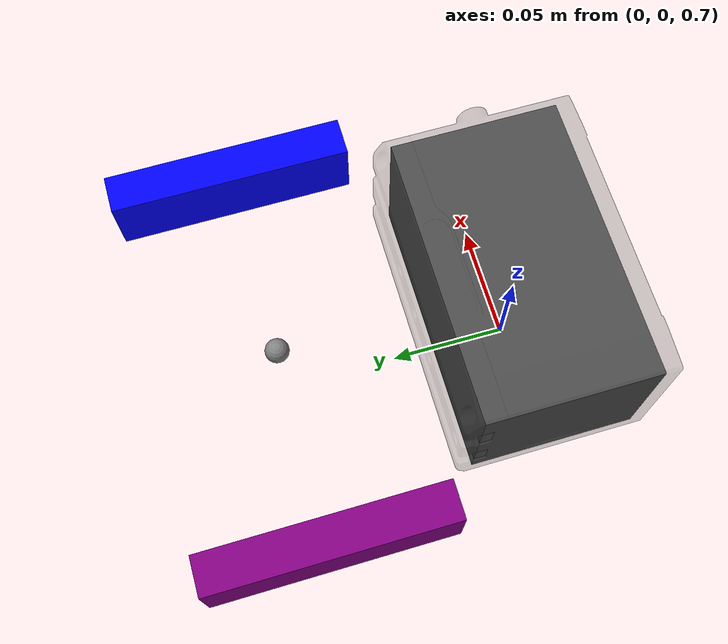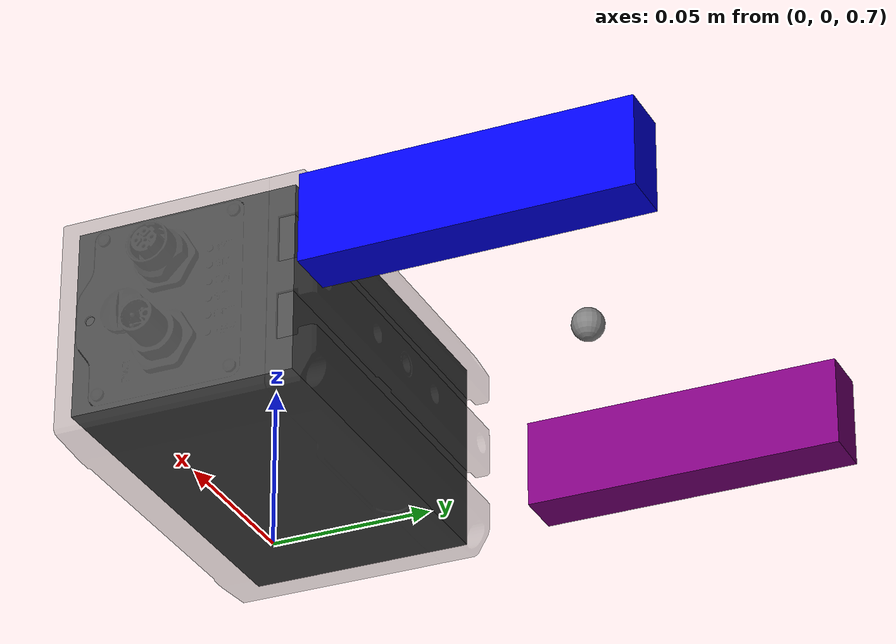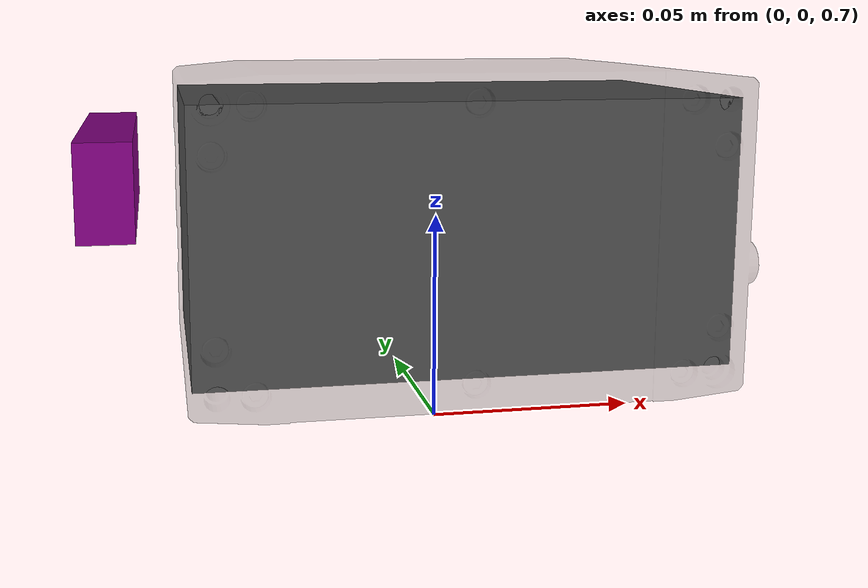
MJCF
<mujoco model="ur5e schunk">
  <compiler angle="radian" meshdir="assets" autolimits="true"/>

  <default>
    <default class="ur5eL">
      <material specular="0.5" shininess="0.25"/>
      <joint axis="0 1 0" range="-6.28319 6.28319" armature="0.1"/>
      <general gaintype="fixed" biastype="affine" ctrlrange="-6.2831 6.2831" gainprm="2000" biasprm="0 -2000 -400"
        forcerange="-150 150"/>
      <default class="size3L">
        <joint armature="0.1" damping="200" />
        <position kp="10000" forcerange="-150 150" ctrllimited="true" />
        <default class="size3_limitedL">
          <joint range="-3.1415 3.1415"/>
          <position kp="10000" ctrlrange="-3.14 3.14" ctrllimited="true" />
        </default>
      </default>
      <default class="finger">
        <joint axis="-1 0 0" type="slide" range="0 0.07"/>
        <general dyntype="none" biastype="affine" ctrlrange="0 0.07" forcerange="-150 150"/>
      </default>
      <default class="size1L">
        <joint armature="0.1" damping="50" />
        <position kp="9000" forcerange="-28 28" />
      </default>
      <default class="visualL">
        <geom type="mesh" contype="0" conaffinity="0" group="2"/>
      </default>
      <default class="collisionL">
        <geom type="capsule" group="3"/>
        <default class="eef_collisionL">
          <geom type="cylinder"/>
        </default>
      </default>
      <site size="0.001" rgba="0.5 0.5 0.5 0.3" group="4"/>
    </default>
  </default>

  <asset>
    <material class="ur5eL" name="blackL" rgba="0.033 0.033 0.033 1"/>
    <material class="ur5eL" name="jointgrayL" rgba="0.278 0.278 0.278 1"/>
    <material class="ur5eL" name="linkgrayL" rgba="0.82 0.82 0.82 1"/>
    <material class="ur5eL" name="urblueL" rgba="0.49 0.678 0.8 1"/>

    <mesh name="base_0L" file="base_0.obj"/>
    <mesh name="base_1L" file="base_1.obj"/>
    <mesh name="shoulder_0L" file="shoulder_0.obj"/>
    <mesh name="shoulder_1L" file="shoulder_1.obj"/>
    <mesh name="shoulder_2L" file="shoulder_2.obj"/>
    <mesh name="upperarm_0L" file="upperarm_0.obj"/>
    <mesh name="upperarm_1L" file="upperarm_1.obj"/>
    <mesh name="upperarm_2L" file="upperarm_2.obj"/>
    <mesh name="upperarm_3L" file="upperarm_3.obj"/>
    <mesh name="forearm_0L" file="forearm_0.obj"/>
    <mesh name="forearm_1L" file="forearm_1.obj"/>
    <mesh name="forearm_2L" file="forearm_2.obj"/>
    <mesh name="forearm_3L" file="forearm_3.obj"/>
    <mesh name="wrist1_0L" file="wrist1_0.obj"/>
    <mesh name="wrist1_1L" file="wrist1_1.obj"/>
    <mesh name="wrist1_2L" file="wrist1_2.obj"/>
    <mesh name="wrist2_0L" file="wrist2_0.obj"/>
    <mesh name="wrist2_1L" file="wrist2_1.obj"/>
    <mesh name="wrist2_2L" file="wrist2_2.obj"/>
    <mesh name="wrist3L" file="wrist3.obj"/>
    <mesh name="schunkbaseL" file="schunkbase.obj"/>
  </asset>

  <worldbody>
    <body mocap='true' name="LEEF" pos="0 0.1 0.75" quat="1 0 0 0">
<!--      for the chain robot ee quat is (1 -1 0 0), so if you need transfer to real robot, adapt it-->
<!--      rotation order: x>y>z -->
      <site name="EEFee_pos" pos="0 0 0" quat="1 0 0 0"/>
      <inertial mass="0.1889" pos="0 0.0771683 0" quat="1 0 0 1"
        diaginertia="0.000132134 9.90863e-05 9.90863e-05"/>
      <geom material="linkgrayL" mesh="schunkbaseL" pos="0 -0.14 0" class="visualL" rgba="0.3 0.3 0.3 0.3"/>
      <geom type="box" size="0.06 0.035 0.03" pos="0 -0.1 0" rgba="0.3 0.3 0.3 1" friction="1"/>
      <body name="finger1" pos="0.08 0 0">
        <inertial mass="0.015" pos="0 0 0" diaginertia="2.375e-6 2.375e-6 7.5e-7"/>
        <joint name="finger_joint1" class="finger"/>
        <geom type="box"  size="0.008 0.05 0.014" rgba="0 0 1 1" friction="1"/>
      </body>
      <body name="finger2" pos="-0.08 0 0">
        <inertial mass="0.015" pos="0 0 0" diaginertia="2.375e-6 2.375e-6 7.5e-7"/>
        <joint name="finger_joint2" class="finger" axis="1 0 0"/>
        <geom type="box" size="0.008 0.05 0.014" rgba="0.5 0 0.5 1" friction="1 1 1"/>
      </body>
    </body>
<!--&lt;!&ndash;      rotation order: x>y>z &ndash;&gt;-->
<!--&lt;!&ndash;      0.6963642 -0.664463 0.2418448 0.1227878  -90 10 30&ndash;&gt;-->
<!--&lt;!&ndash;      0.704416 -0.704416 0.0616284 -0.0616284 -90 10 0&ndash;&gt;-->

  </worldbody>

  <equality>
    <joint joint1="finger_joint1" joint2="finger_joint2" solimp="0.99 0.99 0.001" solref="0.005 1"/>
  </equality>

  <actuator>
    <position class="finger" name="fingers" joint="finger_joint1"/>
  </actuator>

</mujoco>
